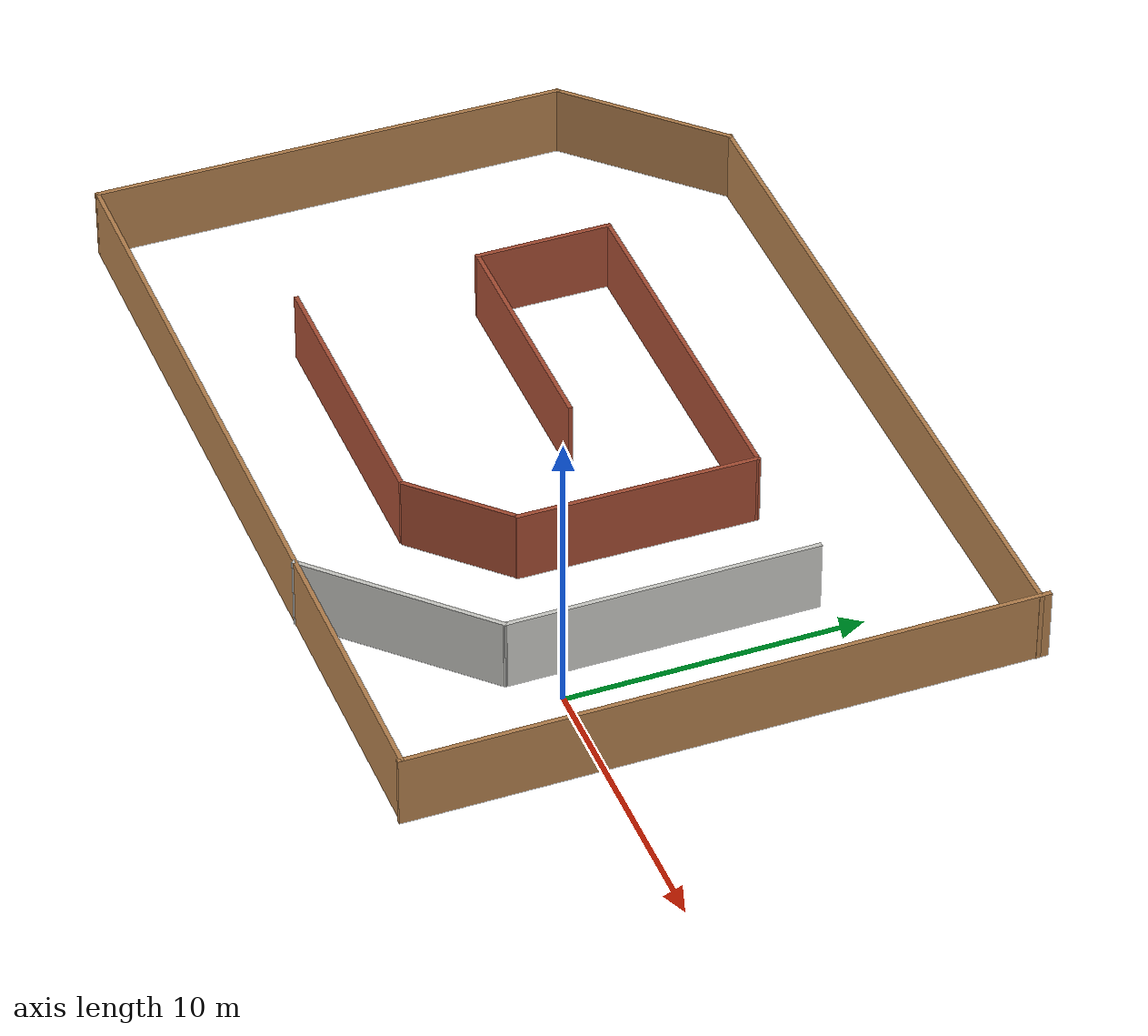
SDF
<?xml version='1.0'?>
<sdf version='1.6'>
  <model name='GBuilding'>
    <pose frame=''>-11.4146 4.05465 0 0 -0 0</pose>
    <link name='Wall_1'>
      <collision name='Wall_1_Collision'>
        <geometry>
          <box>
            <size>29.75 0.15 2.5</size>
          </box>
        </geometry>
        <pose frame=''>0 0 1.25 0 -0 0</pose>
      </collision>
      <visual name='Wall_1_Visual'>
        <pose frame=''>0 0 1.25 0 -0 0</pose>
        <geometry>
          <box>
            <size>29.75 0.15 2.5</size>
          </box>
        </geometry>
        <material>
          <script>
            <uri>file://media/materials/scripts/gazebo.material</uri>
            <name>Gazebo/Wood</name>
          </script>
          <ambient>1 1 1 1</ambient>
        </material>
        <meta>
          <layer>0</layer>
        </meta>
      </visual>
      <pose frame=''>-0.004503 -10.4885 0 0 -0 0</pose>
    </link>
    <link name='Wall_14'>
      <collision name='Wall_14_Collision'>
        <geometry>
          <box>
            <size>8.18354 0.15 2.5</size>
          </box>
        </geometry>
        <pose frame=''>0 0 1.25 0 -0 0</pose>
      </collision>
      <visual name='Wall_14_Visual'>
        <pose frame=''>0 0 1.25 0 -0 0</pose>
        <geometry>
          <box>
            <size>8.18354 0.15 2.5</size>
          </box>
        </geometry>
        <material>
          <script>
            <uri>file://media/materials/scripts/gazebo.material</uri>
            <name>Gazebo/Bricks</name>
          </script>
          <ambient>0.996078 0.47451 0.0196078 1</ambient>
        </material>
        <meta>
          <layer>0</layer>
        </meta>
      </visual>
      <pose frame=''>5.63454 0.680264 0 0 -0 1.56318</pose>
    </link>
    <link name='Wall_15'>
      <collision name='Wall_15_Collision'>
        <geometry>
          <box>
            <size>13 0.15 2.5</size>
          </box>
        </geometry>
        <pose frame=''>0 0 1.25 0 -0 0</pose>
      </collision>
      <visual name='Wall_15_Visual'>
        <pose frame=''>0 0 1.25 0 -0 0</pose>
        <geometry>
          <box>
            <size>13 0.15 2.5</size>
          </box>
        </geometry>
        <material>
          <script>
            <uri>file://media/materials/scripts/gazebo.material</uri>
            <name>Gazebo/Bricks</name>
          </script>
          <ambient>0.666667 0 0 1</ambient>
        </material>
        <meta>
          <layer>0</layer>
        </meta>
      </visual>
      <pose frame=''>-0.759872 4.69703 0 0 -0 3.14159</pose>
    </link>
    <link name='Wall_2'>
      <collision name='Wall_2_Collision'>
        <geometry>
          <box>
            <size>21.25 0.15 2.5</size>
          </box>
        </geometry>
        <pose frame=''>0 0 1.25 0 -0 0</pose>
      </collision>
      <visual name='Wall_2_Visual'>
        <pose frame=''>0 0 1.25 0 -0 0</pose>
        <geometry>
          <box>
            <size>21.25 0.15 2.5</size>
          </box>
        </geometry>
        <material>
          <script>
            <uri>file://media/materials/scripts/gazebo.material</uri>
            <name>Gazebo/Wood</name>
          </script>
          <ambient>1 1 1 1</ambient>
        </material>
        <meta>
          <layer>0</layer>
        </meta>
      </visual>
      <pose frame=''>14.7955 0 0 0 -0 1.5708</pose>
    </link>
    <link name='Wall_20'>
      <collision name='Wall_20_Collision'>
        <geometry>
          <box>
            <size>4 0.15 2.5</size>
          </box>
        </geometry>
        <pose frame=''>0 0 1.25 0 -0 0</pose>
      </collision>
      <visual name='Wall_20_Visual'>
        <pose frame=''>0 0 1.25 0 -0 0</pose>
        <geometry>
          <box>
            <size>4 0.15 2.5</size>
          </box>
        </geometry>
        <material>
          <script>
            <uri>file://media/materials/scripts/gazebo.material</uri>
            <name>Gazebo/Bricks</name>
          </script>
          <ambient>0.996078 0.47451 0.0196078 1</ambient>
        </material>
        <meta>
          <layer>0</layer>
        </meta>
      </visual>
      <pose frame=''>4.18594 -4.73744 0 0 -0 0.785398</pose>
    </link>
    <link name='Wall_22'>
      <collision name='Wall_22_Collision'>
        <geometry>
          <box>
            <size>10 0.15 2.5</size>
          </box>
        </geometry>
        <pose frame=''>0 0 1.25 0 -0 0</pose>
      </collision>
      <visual name='Wall_22_Visual'>
        <pose frame=''>0 0 1.25 0 -0 0</pose>
        <geometry>
          <box>
            <size>10 0.15 2.5</size>
          </box>
        </geometry>
        <material>
          <script>
            <uri>file://media/materials/scripts/gazebo.material</uri>
            <name>Gazebo/Bricks</name>
          </script>
          <ambient>0.996078 0.47451 0.0196078 1</ambient>
        </material>
        <meta>
          <layer>0</layer>
        </meta>
      </visual>
      <pose frame=''>-2.25987 -6.15297 0 0 -0 0</pose>
    </link>
    <link name='Wall_24'>
      <collision name='Wall_24_Collision'>
        <geometry>
          <box>
            <size>7.25 0.15 2.5</size>
          </box>
        </geometry>
        <pose frame=''>0 0 1.25 0 -0 0</pose>
      </collision>
      <visual name='Wall_24_Visual'>
        <pose frame=''>0 0 1.25 0 -0 0</pose>
        <geometry>
          <box>
            <size>7.25 0.15 2.5</size>
          </box>
        </geometry>
        <material>
          <script>
            <uri>file://media/materials/scripts/gazebo.material</uri>
            <name>Gazebo/CeilingTiled</name>
          </script>
          <ambient>0.435294 0.796078 0.67451 1</ambient>
        </material>
        <meta>
          <layer>0</layer>
        </meta>
      </visual>
      <pose frame=''>7.68662 -7.99043 0 0 0 -2.35619</pose>
    </link>
    <link name='Wall_26'>
      <collision name='Wall_26_Collision'>
        <geometry>
          <box>
            <size>10.5 0.15 2.5</size>
          </box>
        </geometry>
        <pose frame=''>0 0 1.25 0 -0 0</pose>
      </collision>
      <visual name='Wall_26_Visual'>
        <pose frame=''>0 0 1.25 0 -0 0</pose>
        <geometry>
          <box>
            <size>10.5 0.15 2.5</size>
          </box>
        </geometry>
        <material>
          <script>
            <uri>file://media/materials/scripts/gazebo.material</uri>
            <name>Gazebo/CeilingTiled</name>
          </script>
          <ambient>0.435294 0.796078 0.67451 1</ambient>
        </material>
        <meta>
          <layer>0</layer>
        </meta>
      </visual>
      <pose frame=''>10.1968 -0.305197 0 0 -0 1.5708</pose>
    </link>
    <link name='Wall_28'>
      <collision name='Wall_28_Collision'>
        <geometry>
          <box>
            <size>6.5 0.15 2.5</size>
          </box>
        </geometry>
        <pose frame=''>0 0 1.25 0 -0 0</pose>
      </collision>
      <visual name='Wall_28_Visual'>
        <pose frame=''>0 0 1.25 0 -0 0</pose>
        <geometry>
          <box>
            <size>6.5 0.15 2.5</size>
          </box>
        </geometry>
        <material>
          <script>
            <uri>file://media/materials/scripts/gazebo.material</uri>
            <name>Gazebo/Wood</name>
          </script>
          <ambient>1 1 1 1</ambient>
        </material>
        <meta>
          <layer>0</layer>
        </meta>
      </visual>
      <pose frame=''>-12.5345 8.02838 0 0 0 -2.35619</pose>
    </link>
    <link name='Wall_30'>
      <collision name='Wall_30_Collision'>
        <geometry>
          <box>
            <size>16.4218 0.15 2.5</size>
          </box>
        </geometry>
        <pose frame=''>0 0 1.25 0 -0 0</pose>
      </collision>
      <visual name='Wall_30_Visual'>
        <pose frame=''>0 0 1.25 0 -0 0</pose>
        <geometry>
          <box>
            <size>16.4218 0.15 2.5</size>
          </box>
        </geometry>
        <material>
          <script>
            <uri>file://media/materials/scripts/gazebo.material</uri>
            <name>Gazebo/Wood</name>
          </script>
          <ambient>1 1 1 1</ambient>
        </material>
        <meta>
          <layer>0</layer>
        </meta>
      </visual>
      <pose frame=''>-14.792 -2.35258 0 0 -0 1.56926</pose>
    </link>
    <link name='Wall_32'>
      <collision name='Wall_32_Collision'>
        <geometry>
          <box>
            <size>25.25 0.15 2.5</size>
          </box>
        </geometry>
        <pose frame=''>0 0 1.25 0 -0 0</pose>
      </collision>
      <visual name='Wall_32_Visual'>
        <pose frame=''>0 0 1.25 0 -0 0</pose>
        <geometry>
          <box>
            <size>25.25 0.15 2.5</size>
          </box>
        </geometry>
        <material>
          <script>
            <uri>file://media/materials/scripts/gazebo.material</uri>
            <name>Gazebo/Wood</name>
          </script>
          <ambient>1 1 1 1</ambient>
        </material>
        <meta>
          <layer>0</layer>
        </meta>
      </visual>
      <pose frame=''>2.2606 10.2734 0 0 -0 0</pose>
    </link>
    <link name='Wall_35'>
      <collision name='Wall_35_Collision'>
        <geometry>
          <box>
            <size>4.75 0.15 2.5</size>
          </box>
        </geometry>
        <pose frame=''>0 0 1.25 0 -0 0</pose>
      </collision>
      <visual name='Wall_35_Visual'>
        <pose frame=''>0 0 1.25 0 -0 0</pose>
        <geometry>
          <box>
            <size>4.75 0.15 2.5</size>
          </box>
        </geometry>
        <material>
          <script>
            <uri>file://media/materials/scripts/gazebo.material</uri>
            <name>Gazebo/Bricks</name>
          </script>
          <ambient>0.666667 0 0 1</ambient>
        </material>
        <meta>
          <layer>0</layer>
        </meta>
      </visual>
      <pose frame=''>-7.18487 2.39703 0 0 0 -1.5708</pose>
    </link>
    <link name='Wall_36'>
      <collision name='Wall_36_Collision'>
        <geometry>
          <box>
            <size>8.5 0.15 2.5</size>
          </box>
        </geometry>
        <pose frame=''>0 0 1.25 0 -0 0</pose>
      </collision>
      <visual name='Wall_36_Visual'>
        <pose frame=''>0 0 1.25 0 -0 0</pose>
        <geometry>
          <box>
            <size>8.5 0.15 2.5</size>
          </box>
        </geometry>
        <material>
          <script>
            <uri>file://media/materials/scripts/gazebo.material</uri>
            <name>Gazebo/Bricks</name>
          </script>
          <ambient>0.666667 0 0 1</ambient>
        </material>
        <meta>
          <layer>0</layer>
        </meta>
      </visual>
      <pose frame=''>-3.00987 0.097034 0 0 -0 0</pose>
    </link>
    <static>1</static>
  </model>
</sdf>
